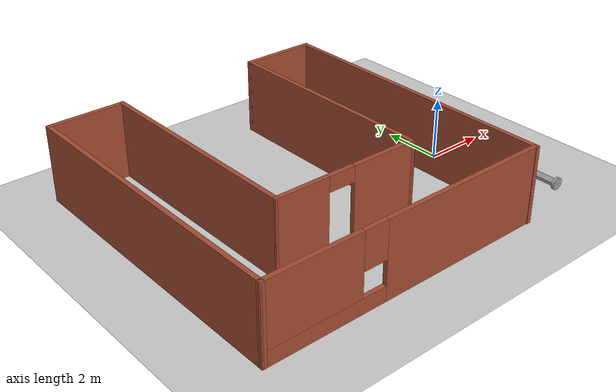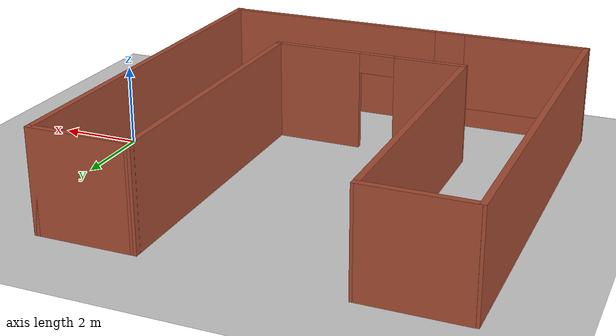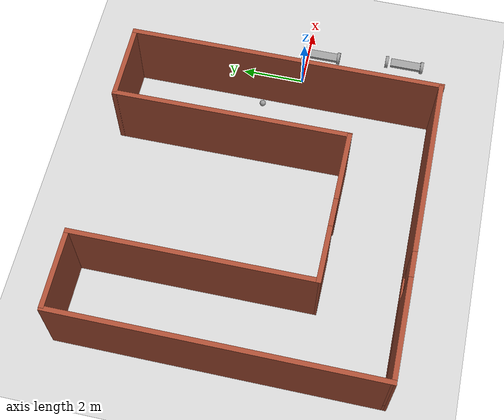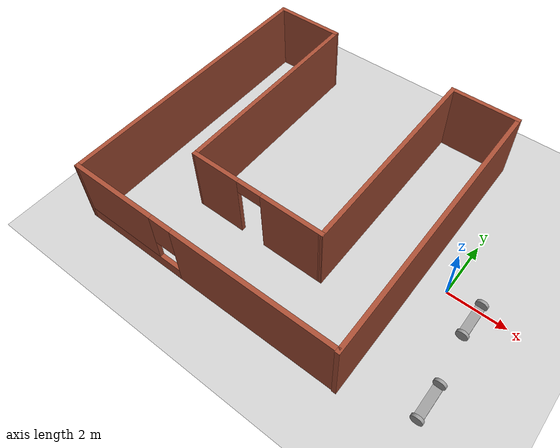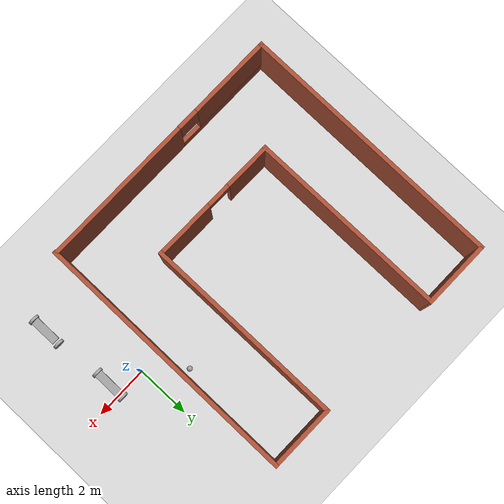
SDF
<sdf version="1.6">
 <world name="default">
  <plugin name="hello" filename="libhello.so"/>
  <light name="sun" type="directional">
   <pose>0 0 10 0 -0 0</pose>
   <diffuse>0.8 0.8 0.8 1</diffuse>
   <specular>0.2 0.2 0.2 1</specular>
   <attenuation>
    <range>1000</range>
    <constant>0.9</constant>
    <linear>0.01</linear>
    <quadratic>0.001</quadratic>
   </attenuation>
   <direction>-0.5 0.1 -0.9</direction>
  </light>
  <model name="ground_plane">
   <static>1</static>
   <link name="link">
    <collision name="collision">
     <geometry><plane><normal>0 0 1</normal><size>100 100</size></plane></geometry>
     <surface>
      <contact><collide_bitmask>65535</collide_bitmask></contact>
      <friction><ode><mu>100</mu><mu2>50</mu2></ode></friction>
     </surface>
    </collision>
    <visual name="visual">
     <cast_shadows>0</cast_shadows>
     <geometry><plane><normal>0 0 1</normal><size>100 100</size></plane></geometry>
     <material>
      <script><uri>file://media/materials/scripts/gazebo.material</uri><name>Gazebo/Grey</name></script>
     </material>
    </visual>
   </link>
  </model>
  <gravity>0 0 -9.8</gravity>
  <magnetic_field>6e-06 2.3e-05 -4.2e-05</magnetic_field>
  <atmosphere type="adiabatic"/>
  <physics name="default_physics" default="0" type="ode">
   <max_step_size>0.001</max_step_size>
   <real_time_factor>1</real_time_factor>
   <real_time_update_rate>1000</real_time_update_rate>
  </physics>
  <scene><ambient>0.4 0.4 0.4 1</ambient><background>0.7 0.7 0.7 1</background><shadows>1</shadows></scene>
  <spherical_coordinates>
   <surface_model>EARTH_WGS84</surface_model>
   <latitude_deg>0</latitude_deg>
   <longitude_deg>0</longitude_deg>
   <elevation>0</elevation>
   <heading_deg>0</heading_deg>
  </spherical_coordinates>
  <model name="Building">
   <pose>-5.73051 0.46312 0 0 -0 0</pose>
   <link name="Wall_0">
    <collision name="Wall_0_Collision">
     <geometry><box><size>2.5 0.15 2.5</size></box></geometry>
     <pose>0 0 1.25 0 -0 0</pose>
    </collision>
    <visual name="Wall_0_Visual">
     <pose>0 0 1.25 0 -0 0</pose>
     <geometry><box><size>2.5 0.15 2.5</size></box></geometry>
     <material>
      <script><uri>file://media/materials/scripts/gazebo.material</uri><name>Gazebo/Bricks</name></script>
      <ambient>1 1 1 1</ambient>
     </material>
     <meta><layer>0</layer></meta>
    </visual>
    <pose>-3.5735 4.94038 0 0 -0 0</pose>
   </link>
   <link name="Wall_1">
    <collision name="Wall_1_Collision">
     <geometry><box><size>7.5 0.15 2.5</size></box></geometry>
     <pose>0 0 1.25 0 -0 0</pose>
    </collision>
    <visual name="Wall_1_Visual">
     <pose>0 0 1.25 0 -0 0</pose>
     <geometry><box><size>7.5 0.15 2.5</size></box></geometry>
     <material>
      <script><uri>file://media/materials/scripts/gazebo.material</uri><name>Gazebo/Bricks</name></script>
      <ambient>0.760784 0.662745 0.627451 1</ambient>
     </material>
     <meta><layer>0</layer></meta>
    </visual>
    <pose>-2.3855 1.26538 0 0 0 -1.56726</pose>
   </link>
   <link name="Wall_16">
    <pose>-0.028466 -4.91662 0 0 -0 3.14159</pose>
    <visual name="Wall_16_Visual_0">
     <pose>-1.99596 0 1.25 0 -0 0</pose>
     <geometry><box><size>5.75809 0.15 2.5</size></box></geometry>
     <material>
      <script><uri>file://media/materials/scripts/gazebo.material</uri><name>Gazebo/Bricks</name></script>
      <ambient>0.760784 0.662745 0.627451 1</ambient>
     </material>
     <meta><layer>0</layer></meta>
    </visual>
    <collision name="Wall_16_Collision_0">
     <geometry><box><size>5.75809 0.15 2.5</size></box></geometry>
     <pose>-1.99596 0 1.25 0 -0 0</pose>
    </collision>
    <visual name="Wall_16_Visual_1">
     <pose>2.87904 0 0.25 0 -0 0</pose>
     <geometry><box><size>3.99191 0.15 0.5</size></box></geometry>
     <material>
      <script><uri>file://media/materials/scripts/gazebo.material</uri><name>Gazebo/Bricks</name></script>
      <ambient>0.760784 0.662745 0.627451 1</ambient>
     </material>
     <meta><layer>0</layer></meta>
    </visual>
    <collision name="Wall_16_Collision_1">
     <geometry><box><size>3.99191 0.15 0.5</size></box></geometry>
     <pose>2.87904 0 0.25 0 -0 0</pose>
    </collision>
    <visual name="Wall_16_Visual_2">
     <pose>3.27904 0 1.5 0 -0 0</pose>
     <geometry><box><size>3.19191 0.15 2</size></box></geometry>
     <material>
      <script><uri>file://media/materials/scripts/gazebo.material</uri><name>Gazebo/Bricks</name></script>
      <ambient>0.760784 0.662745 0.627451 1</ambient>
     </material>
     <meta><layer>0</layer></meta>
    </visual>
    <collision name="Wall_16_Collision_2">
     <geometry><box><size>3.19191 0.15 2</size></box></geometry>
     <pose>3.27904 0 1.5 0 -0 0</pose>
    </collision>
    <visual name="Wall_16_Visual_3">
     <pose>1.28309 0 1.9 0 -0 0</pose>
     <geometry><box><size>0.8 0.15 1.2</size></box></geometry>
     <material>
      <script><uri>file://media/materials/scripts/gazebo.material</uri><name>Gazebo/Bricks</name></script>
      <ambient>0.760784 0.662745 0.627451 1</ambient>
     </material>
     <meta><layer>0</layer></meta>
    </visual>
    <collision name="Wall_16_Collision_3">
     <geometry><box><size>0.8 0.15 1.2</size></box></geometry>
     <pose>1.28309 0 1.9 0 -0 0</pose>
    </collision>
   </link>
   <link name="Wall_2">
    <pose>0.039503 -2.42712 0 0 0 -0.007255</pose>
    <visual name="Wall_2_Visual_0">
     <pose>-1.57978 0 1.25 0 -0 0</pose>
     <geometry><box><size>1.81451 0.15 2.5</size></box></geometry>
     <material>
      <script><uri>file://media/materials/scripts/gazebo.material</uri><name>Gazebo/Bricks</name></script>
      <ambient>0.760784 0.662745 0.627451 1</ambient>
     </material>
     <meta><layer>0</layer></meta>
    </visual>
    <collision name="Wall_2_Collision_0">
     <geometry><box><size>1.81451 0.15 2.5</size></box></geometry>
     <pose>-1.57978 0 1.25 0 -0 0</pose>
    </collision>
    <visual name="Wall_2_Visual_1">
     <pose>1.35726 0 1.25 0 -0 0</pose>
     <geometry><box><size>2.25957 0.15 2.5</size></box></geometry>
     <material>
      <script><uri>file://media/materials/scripts/gazebo.material</uri><name>Gazebo/Bricks</name></script>
      <ambient>0.760784 0.662745 0.627451 1</ambient>
     </material>
     <meta><layer>0</layer></meta>
    </visual>
    <collision name="Wall_2_Collision_1">
     <geometry><box><size>2.25957 0.15 2.5</size></box></geometry>
     <pose>1.35726 0 1.25 0 -0 0</pose>
    </collision>
    <visual name="Wall_2_Visual_2">
     <pose>-0.222528 0 2.25 0 -0 0</pose>
     <geometry><box><size>0.9 0.15 0.5</size></box></geometry>
     <material>
      <script><uri>file://media/materials/scripts/gazebo.material</uri><name>Gazebo/Bricks</name></script>
      <ambient>0.760784 0.662745 0.627451 1</ambient>
     </material>
     <meta><layer>0</layer></meta>
    </visual>
    <collision name="Wall_2_Collision_2">
     <geometry><box><size>0.9 0.15 0.5</size></box></geometry>
     <pose>-0.222528 0 2.25 0 -0 0</pose>
    </collision>
   </link>
   <link name="Wall_3">
    <collision name="Wall_3_Collision">
     <geometry><box><size>7.5 0.15 2.5</size></box></geometry>
     <pose>0 0 1.25 0 -0 0</pose>
    </collision>
    <visual name="Wall_3_Visual">
     <pose>0 0 1.25 0 -0 0</pose>
     <geometry><box><size>7.5 0.15 2.5</size></box></geometry>
     <material>
      <script><uri>file://media/materials/scripts/gazebo.material</uri><name>Gazebo/Bricks</name></script>
      <ambient>0.760784 0.662745 0.627451 1</ambient>
     </material>
     <meta><layer>0</layer></meta>
    </visual>
    <pose>2.46459 1.23038 0 0 -0 1.57436</pose>
   </link>
   <link name="Wall_4">
    <collision name="Wall_4_Collision">
     <geometry><box><size>2.52653 0.15 2.5</size></box></geometry>
     <pose>0 0 1.25 0 -0 0</pose>
    </collision>
    <visual name="Wall_4_Visual">
     <pose>0 0 1.25 0 -0 0</pose>
     <geometry><box><size>2.52653 0.15 2.5</size></box></geometry>
     <material>
      <script><uri>file://media/materials/scripts/gazebo.material</uri><name>Gazebo/Bricks</name></script>
      <ambient>0.760784 0.662745 0.627451 1</ambient>
     </material>
     <meta><layer>0</layer></meta>
    </visual>
    <pose>3.64 4.90538 0 0 -0 0</pose>
   </link>
   <link name="Wall_5">
    <collision name="Wall_5_Collision">
     <geometry><box><size>9.996 0.15 2.5</size></box></geometry>
     <pose>0 0 1.25 0 -0 0</pose>
    </collision>
    <visual name="Wall_5_Visual">
     <pose>0 0 1.25 0 -0 0</pose>
     <geometry><box><size>9.996 0.15 2.5</size></box></geometry>
     <material>
      <script><uri>file://media/materials/scripts/gazebo.material</uri><name>Gazebo/Bricks</name></script>
      <ambient>0.760784 0.662745 0.627451 1</ambient>
     </material>
     <meta><layer>0</layer></meta>
    </visual>
    <pose>4.8285 -0.017621 0 0 0 -1.5708</pose>
   </link>
   <link name="Wall_7">
    <collision name="Wall_7_Collision">
     <geometry><box><size>10 0.15 2.5</size></box></geometry>
     <pose>0 0 1.25 0 -0 0</pose>
    </collision>
    <visual name="Wall_7_Visual">
     <pose>0 0 1.25 0 -0 0</pose>
     <geometry><box><size>10 0.15 2.5</size></box></geometry>
     <material>
      <script><uri>file://media/materials/scripts/gazebo.material</uri><name>Gazebo/Bricks</name></script>
      <ambient>0.760784 0.662745 0.627451 1</ambient>
     </material>
     <meta><layer>0</layer></meta>
    </visual>
    <pose>-4.82597 0.008379 0 0 -0 1.57029</pose>
   </link>
   <static>1</static>
  </model>
  <model name="Chassis">
   <link name="link_0">
    <pose>0 -0 0.2 0 -0 0</pose>
    <inertial>
     <mass>1</mass>
     <inertia>
      <ixx>0.166667</ixx>
      <ixy>0</ixy>
      <ixz>0</ixz>
      <iyy>0.166667</iyy>
      <iyz>0</iyz>
      <izz>0.166667</izz>
     </inertia>
    </inertial>
    <visual name="visual">
     <geometry><box><size>0.3 1 0.1</size></box></geometry>
     <material>
      <lighting>1</lighting>
      <script><uri>file://media/materials/scripts/gazebo.material</uri><name>Gazebo/Grey</name></script>
      <shader type="pixel"><normal_map>__default__</normal_map></shader>
      <ambient>0.3 0.3 0.3 1</ambient>
      <diffuse>0.7 0.7 0.7 1</diffuse>
      <specular>0.01 0.01 0.01 1</specular>
      <emissive>0 0 0 1</emissive>
     </material>
    </visual>
    <collision name="collision">
     <geometry><box><size>0.3 1 0.1</size></box></geometry>
     <surface>
      <friction>
       <ode><mu>1</mu><mu2>1</mu2><fdir1>0 0 0</fdir1><slip1>0</slip1><slip2>0</slip2></ode>
       <torsional>
        <coefficient>1</coefficient>
        <patch_radius>0</patch_radius>
        <surface_radius>0</surface_radius>
        <use_patch_radius>1</use_patch_radius>
        <ode><slip>0</slip></ode>
       </torsional>
      </friction>
      <bounce><restitution_coefficient>0</restitution_coefficient><threshold>1e+06</threshold></bounce>
      <contact>
       <collide_without_contact>0</collide_without_contact>
       <collide_without_contact_bitmask>1</collide_without_contact_bitmask>
       <collide_bitmask>1</collide_bitmask>
       <ode>
        <soft_cfm>0</soft_cfm>
        <soft_erp>0.2</soft_erp>
        <kp>1e+13</kp>
        <kd>1</kd>
        <max_vel>0.01</max_vel>
        <min_depth>0</min_depth>
       </ode>
       <bullet>
        <split_impulse>1</split_impulse>
        <split_impulse_penetration_threshold>-0.01</split_impulse_penetration_threshold>
        <soft_cfm>0</soft_cfm>
        <soft_erp>0.2</soft_erp>
        <kp>1e+13</kp>
        <kd>1</kd>
       </bullet>
      </contact>
     </surface>
    </collision>
   </link>
   <link name="link_0_0">
    <pose>0 0.640159 0.2 1.57 -0 0</pose>
    <inertial>
     <mass>1</mass>
     <inertia><ixx>0.145833</ixx><ixy>0</ixy><ixz>0</ixz><iyy>0.145833</iyy><iyz>0</iyz><izz>0.125</izz></inertia>
    </inertial>
    <visual name="visual">
     <geometry><cylinder><radius>0.2</radius><length>0.1</length></cylinder></geometry>
     <material>
      <lighting>1</lighting>
      <script><uri>file://media/materials/scripts/gazebo.material</uri><name>Gazebo/Grey</name></script>
      <shader type="pixel"><normal_map>__default__</normal_map></shader>
      <ambient>0.3 0.3 0.3 1</ambient>
      <diffuse>0.7 0.7 0.7 1</diffuse>
      <specular>0.01 0.01 0.01 1</specular>
      <emissive>0 0 0 1</emissive>
     </material>
    </visual>
    <collision name="collision">
     <geometry><cylinder><radius>0.2</radius><length>0.1</length></cylinder></geometry>
     <surface>
      <friction>
       <ode><mu>1</mu><mu2>1</mu2><fdir1>0 0 0</fdir1><slip1>0</slip1><slip2>0</slip2></ode>
       <torsional>
        <coefficient>1</coefficient>
        <patch_radius>0</patch_radius>
        <surface_radius>0</surface_radius>
        <use_patch_radius>1</use_patch_radius>
        <ode><slip>0</slip></ode>
       </torsional>
      </friction>
      <bounce><restitution_coefficient>0</restitution_coefficient><threshold>1e+06</threshold></bounce>
      <contact>
       <collide_without_contact>0</collide_without_contact>
       <collide_without_contact_bitmask>1</collide_without_contact_bitmask>
       <collide_bitmask>1</collide_bitmask>
       <ode>
        <soft_cfm>0</soft_cfm>
        <soft_erp>0.2</soft_erp>
        <kp>1e+13</kp>
        <kd>1</kd>
        <max_vel>0.01</max_vel>
        <min_depth>0</min_depth>
       </ode>
       <bullet>
        <split_impulse>1</split_impulse>
        <split_impulse_penetration_threshold>-0.01</split_impulse_penetration_threshold>
        <soft_cfm>0</soft_cfm>
        <soft_erp>0.2</soft_erp>
        <kp>1e+13</kp>
        <kd>1</kd>
       </bullet>
      </contact>
     </surface>
    </collision>
   </link>
   <link name="link_1">
    <pose>0 -0.550159 0.2 1.57 -0 0</pose>
    <inertial>
     <mass>1</mass>
     <inertia><ixx>0.145833</ixx><ixy>0</ixy><ixz>0</ixz><iyy>0.145833</iyy><iyz>0</iyz><izz>0.125</izz></inertia>
    </inertial>
    <visual name="visual">
     <geometry><cylinder><radius>0.2</radius><length>0.1</length></cylinder></geometry>
     <material>
      <lighting>1</lighting>
      <script><uri>file://media/materials/scripts/gazebo.material</uri><name>Gazebo/Grey</name></script>
      <shader type="pixel"><normal_map>__default__</normal_map></shader>
      <ambient>0.3 0.3 0.3 1</ambient>
      <diffuse>0.7 0.7 0.7 1</diffuse>
      <specular>0.01 0.01 0.01 1</specular>
      <emissive>0 0 0 1</emissive>
     </material>
    </visual>
    <collision name="collision">
     <geometry><cylinder><radius>0.2</radius><length>0.1</length></cylinder></geometry>
     <surface>
      <friction>
       <ode><mu>1</mu><mu2>1</mu2><fdir1>0 0 0</fdir1><slip1>0</slip1><slip2>0</slip2></ode>
       <torsional>
        <coefficient>1</coefficient>
        <patch_radius>0</patch_radius>
        <surface_radius>0</surface_radius>
        <use_patch_radius>1</use_patch_radius>
        <ode><slip>0</slip></ode>
       </torsional>
      </friction>
      <bounce><restitution_coefficient>0</restitution_coefficient><threshold>1e+06</threshold></bounce>
      <contact>
       <collide_without_contact>0</collide_without_contact>
       <collide_without_contact_bitmask>1</collide_without_contact_bitmask>
       <collide_bitmask>1</collide_bitmask>
       <ode>
        <soft_cfm>0</soft_cfm>
        <soft_erp>0.2</soft_erp>
        <kp>1e+13</kp>
        <kd>1</kd>
        <max_vel>0.01</max_vel>
        <min_depth>0</min_depth>
       </ode>
       <bullet>
        <split_impulse>1</split_impulse>
        <split_impulse_penetration_threshold>-0.01</split_impulse_penetration_threshold>
        <soft_cfm>0</soft_cfm>
        <soft_erp>0.2</soft_erp>
        <kp>1e+13</kp>
        <kd>1</kd>
       </bullet>
      </contact>
     </surface>
    </collision>
   </link>
   <joint name="link_0_JOINT_0" type="revolute">
    <parent>link_0</parent>
    <child>link_1</child>
    <axis>
     <xyz>0 0 1</xyz>
     <use_parent_model_frame>0</use_parent_model_frame>
     <limit>
      <lower>-1.79769e+308</lower>
      <upper>1.79769e+308</upper>
      <effort>-1</effort>
      <velocity>-1</velocity>
     </limit>
     <dynamics>
      <spring_reference>0</spring_reference>
      <spring_stiffness>0</spring_stiffness>
      <damping>0</damping>
      <friction>0</friction>
     </dynamics>
    </axis>
    <physics>
     <ode><limit><cfm>0</cfm><erp>0.2</erp></limit><suspension><cfm>0</cfm><erp>0.2</erp></suspension></ode>
    </physics>
   </joint>
   <joint name="link_0_JOINT_1" type="revolute">
    <parent>link_0</parent>
    <child>link_0_0</child>
    <axis>
     <xyz>0 0 1</xyz>
     <use_parent_model_frame>0</use_parent_model_frame>
     <limit>
      <lower>-1.79769e+308</lower>
      <upper>1.79769e+308</upper>
      <effort>-1</effort>
      <velocity>-1</velocity>
     </limit>
     <dynamics>
      <spring_reference>0</spring_reference>
      <spring_stiffness>0</spring_stiffness>
      <damping>0</damping>
      <friction>0</friction>
     </dynamics>
    </axis>
    <physics>
     <ode><limit><cfm>0</cfm><erp>0.2</erp></limit><suspension><cfm>0</cfm><erp>0.2</erp></suspension></ode>
    </physics>
   </joint>
   <static>0</static>
   <pose>1.06304 -0.491631 3.6e-05 5e-06 -0 0</pose>
  </model>
  <model name="Chassis_0">
   <link name="link_0">
    <pose>0 -0 0.2 0 -0 0</pose>
    <inertial>
     <mass>1</mass>
     <inertia>
      <ixx>0.166667</ixx>
      <ixy>0</ixy>
      <ixz>0</ixz>
      <iyy>0.166667</iyy>
      <iyz>0</iyz>
      <izz>0.166667</izz>
     </inertia>
    </inertial>
    <visual name="visual">
     <geometry><box><size>0.3 1 0.1</size></box></geometry>
     <material>
      <lighting>1</lighting>
      <script><uri>file://media/materials/scripts/gazebo.material</uri><name>Gazebo/Grey</name></script>
      <shader type="pixel"><normal_map>__default__</normal_map></shader>
      <ambient>0.3 0.3 0.3 1</ambient>
      <diffuse>0.7 0.7 0.7 1</diffuse>
      <specular>0.01 0.01 0.01 1</specular>
      <emissive>0 0 0 1</emissive>
     </material>
    </visual>
    <collision name="collision">
     <geometry><box><size>0.3 1 0.1</size></box></geometry>
     <surface>
      <friction>
       <ode><mu>1</mu><mu2>1</mu2><fdir1>0 0 0</fdir1><slip1>0</slip1><slip2>0</slip2></ode>
       <torsional>
        <coefficient>1</coefficient>
        <patch_radius>0</patch_radius>
        <surface_radius>0</surface_radius>
        <use_patch_radius>1</use_patch_radius>
        <ode><slip>0</slip></ode>
       </torsional>
      </friction>
      <bounce><restitution_coefficient>0</restitution_coefficient><threshold>1e+06</threshold></bounce>
      <contact>
       <collide_without_contact>0</collide_without_contact>
       <collide_without_contact_bitmask>1</collide_without_contact_bitmask>
       <collide_bitmask>1</collide_bitmask>
       <ode>
        <soft_cfm>0</soft_cfm>
        <soft_erp>0.2</soft_erp>
        <kp>1e+13</kp>
        <kd>1</kd>
        <max_vel>0.01</max_vel>
        <min_depth>0</min_depth>
       </ode>
       <bullet>
        <split_impulse>1</split_impulse>
        <split_impulse_penetration_threshold>-0.01</split_impulse_penetration_threshold>
        <soft_cfm>0</soft_cfm>
        <soft_erp>0.2</soft_erp>
        <kp>1e+13</kp>
        <kd>1</kd>
       </bullet>
      </contact>
     </surface>
    </collision>
   </link>
   <link name="link_0_0">
    <pose>0 0.640159 0.2 1.57 -0 0</pose>
    <inertial>
     <mass>1</mass>
     <inertia><ixx>0.145833</ixx><ixy>0</ixy><ixz>0</ixz><iyy>0.145833</iyy><iyz>0</iyz><izz>0.125</izz></inertia>
    </inertial>
    <visual name="visual">
     <geometry><cylinder><radius>0.2</radius><length>0.1</length></cylinder></geometry>
     <material>
      <lighting>1</lighting>
      <script><uri>file://media/materials/scripts/gazebo.material</uri><name>Gazebo/Grey</name></script>
      <shader type="pixel"><normal_map>__default__</normal_map></shader>
      <ambient>0.3 0.3 0.3 1</ambient>
      <diffuse>0.7 0.7 0.7 1</diffuse>
      <specular>0.01 0.01 0.01 1</specular>
      <emissive>0 0 0 1</emissive>
     </material>
    </visual>
    <collision name="collision">
     <geometry><cylinder><radius>0.2</radius><length>0.1</length></cylinder></geometry>
     <surface>
      <friction>
       <ode><mu>1</mu><mu2>1</mu2><fdir1>0 0 0</fdir1><slip1>0</slip1><slip2>0</slip2></ode>
       <torsional>
        <coefficient>1</coefficient>
        <patch_radius>0</patch_radius>
        <surface_radius>0</surface_radius>
        <use_patch_radius>1</use_patch_radius>
        <ode><slip>0</slip></ode>
       </torsional>
      </friction>
      <bounce><restitution_coefficient>0</restitution_coefficient><threshold>1e+06</threshold></bounce>
      <contact>
       <collide_without_contact>0</collide_without_contact>
       <collide_without_contact_bitmask>1</collide_without_contact_bitmask>
       <collide_bitmask>1</collide_bitmask>
       <ode>
        <soft_cfm>0</soft_cfm>
        <soft_erp>0.2</soft_erp>
        <kp>1e+13</kp>
        <kd>1</kd>
        <max_vel>0.01</max_vel>
        <min_depth>0</min_depth>
       </ode>
       <bullet>
        <split_impulse>1</split_impulse>
        <split_impulse_penetration_threshold>-0.01</split_impulse_penetration_threshold>
        <soft_cfm>0</soft_cfm>
        <soft_erp>0.2</soft_erp>
        <kp>1e+13</kp>
        <kd>1</kd>
       </bullet>
      </contact>
     </surface>
    </collision>
   </link>
   <link name="link_1">
    <pose>0 -0.550159 0.2 1.57 -0 0</pose>
    <inertial>
     <mass>1</mass>
     <inertia><ixx>0.145833</ixx><ixy>0</ixy><ixz>0</ixz><iyy>0.145833</iyy><iyz>0</iyz><izz>0.125</izz></inertia>
    </inertial>
    <visual name="visual">
     <geometry><cylinder><radius>0.2</radius><length>0.1</length></cylinder></geometry>
     <material>
      <lighting>1</lighting>
      <script><uri>file://media/materials/scripts/gazebo.material</uri><name>Gazebo/Grey</name></script>
      <shader type="pixel"><normal_map>__default__</normal_map></shader>
      <ambient>0.3 0.3 0.3 1</ambient>
      <diffuse>0.7 0.7 0.7 1</diffuse>
      <specular>0.01 0.01 0.01 1</specular>
      <emissive>0 0 0 1</emissive>
     </material>
    </visual>
    <collision name="collision">
     <geometry><cylinder><radius>0.2</radius><length>0.1</length></cylinder></geometry>
     <surface>
      <friction>
       <ode><mu>1</mu><mu2>1</mu2><fdir1>0 0 0</fdir1><slip1>0</slip1><slip2>0</slip2></ode>
       <torsional>
        <coefficient>1</coefficient>
        <patch_radius>0</patch_radius>
        <surface_radius>0</surface_radius>
        <use_patch_radius>1</use_patch_radius>
        <ode><slip>0</slip></ode>
       </torsional>
      </friction>
      <bounce><restitution_coefficient>0</restitution_coefficient><threshold>1e+06</threshold></bounce>
      <contact>
       <collide_without_contact>0</collide_without_contact>
       <collide_without_contact_bitmask>1</collide_without_contact_bitmask>
       <collide_bitmask>1</collide_bitmask>
       <ode>
        <soft_cfm>0</soft_cfm>
        <soft_erp>0.2</soft_erp>
        <kp>1e+13</kp>
        <kd>1</kd>
        <max_vel>0.01</max_vel>
        <min_depth>0</min_depth>
       </ode>
       <bullet>
        <split_impulse>1</split_impulse>
        <split_impulse_penetration_threshold>-0.01</split_impulse_penetration_threshold>
        <soft_cfm>0</soft_cfm>
        <soft_erp>0.2</soft_erp>
        <kp>1e+13</kp>
        <kd>1</kd>
       </bullet>
      </contact>
     </surface>
    </collision>
   </link>
   <joint name="link_0_JOINT_0" type="revolute">
    <parent>link_0</parent>
    <child>link_1</child>
    <axis>
     <xyz>0 0 1</xyz>
     <use_parent_model_frame>0</use_parent_model_frame>
     <limit>
      <lower>-1.79769e+308</lower>
      <upper>1.79769e+308</upper>
      <effort>-1</effort>
      <velocity>-1</velocity>
     </limit>
     <dynamics>
      <spring_reference>0</spring_reference>
      <spring_stiffness>0</spring_stiffness>
      <damping>0</damping>
      <friction>0</friction>
     </dynamics>
    </axis>
    <physics>
     <ode><limit><cfm>0</cfm><erp>0.2</erp></limit><suspension><cfm>0</cfm><erp>0.2</erp></suspension></ode>
    </physics>
   </joint>
   <joint name="link_0_JOINT_1" type="revolute">
    <parent>link_0</parent>
    <child>link_0_0</child>
    <axis>
     <xyz>0 0 1</xyz>
     <use_parent_model_frame>0</use_parent_model_frame>
     <limit>
      <lower>-1.79769e+308</lower>
      <upper>1.79769e+308</upper>
      <effort>-1</effort>
      <velocity>-1</velocity>
     </limit>
     <dynamics>
      <spring_reference>0</spring_reference>
      <spring_stiffness>0</spring_stiffness>
      <damping>0</damping>
      <friction>0</friction>
     </dynamics>
    </axis>
    <physics>
     <ode><limit><cfm>0</cfm><erp>0.2</erp></limit><suspension><cfm>0</cfm><erp>0.2</erp></suspension></ode>
    </physics>
   </joint>
   <static>0</static>
   <pose>1.28147 -3.31723 3.6e-05 5e-06 -0 0</pose>
  </model>
  <model name="my_ball">
   <link name="link">
    <inertial>
     <mass>1</mass>
     <inertia><ixx>0.1</ixx><ixy>0</ixy><ixz>0</ixz><iyy>0.1</iyy><iyz>0</iyz><izz>0.1</izz></inertia>
    </inertial>
    <visual name="visual">
     <geometry><sphere><radius>0.1</radius></sphere></geometry>
     <material>
      <script><name>Gazebo/Grey</name><uri>file://media/materials/scripts/gazebo.material</uri></script>
      <shader type="pixel"><normal_map>__default__</normal_map></shader>
      <ambient>1 1 1 1</ambient>
      <diffuse>1 1 1 1</diffuse>
      <specular>1 1 1 1</specular>
      <emissive>1 1 1 1</emissive>
     </material>
    </visual>
    <collision name="collision">
     <geometry><sphere><radius>0.1</radius></sphere></geometry>
     <surface>
      <friction>
       <ode><mu>1</mu><mu2>1</mu2><fdir1>0 0 0</fdir1><slip1>0</slip1><slip2>0</slip2></ode>
       <torsional>
        <coefficient>1</coefficient>
        <patch_radius>0</patch_radius>
        <surface_radius>0</surface_radius>
        <use_patch_radius>1</use_patch_radius>
        <ode><slip>0</slip></ode>
       </torsional>
      </friction>
      <bounce><restitution_coefficient>0</restitution_coefficient><threshold>1e+06</threshold></bounce>
      <contact>
       <collide_without_contact>0</collide_without_contact>
       <collide_without_contact_bitmask>1</collide_without_contact_bitmask>
       <collide_bitmask>1</collide_bitmask>
       <ode>
        <soft_cfm>0</soft_cfm>
        <soft_erp>0.2</soft_erp>
        <kp>1e+13</kp>
        <kd>1</kd>
        <max_vel>0.01</max_vel>
        <min_depth>0</min_depth>
       </ode>
       <bullet>
        <split_impulse>1</split_impulse>
        <split_impulse_penetration_threshold>-0.01</split_impulse_penetration_threshold>
        <soft_cfm>0</soft_cfm>
        <soft_erp>0.2</soft_erp>
        <kp>1e+13</kp>
        <kd>1</kd>
       </bullet>
      </contact>
     </surface>
    </collision>
   </link>
   <static>0</static>
   <pose>-1.18879 1.12061 0.1 0 -0 0</pose>
  </model>
 </world>
</sdf>
